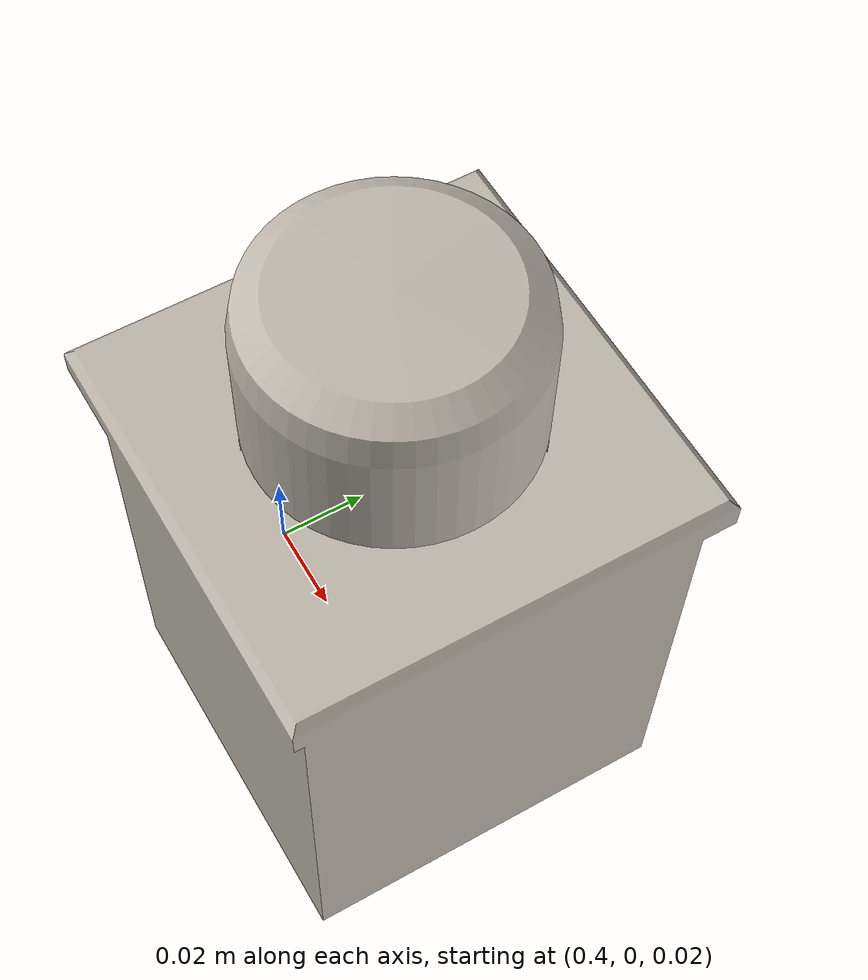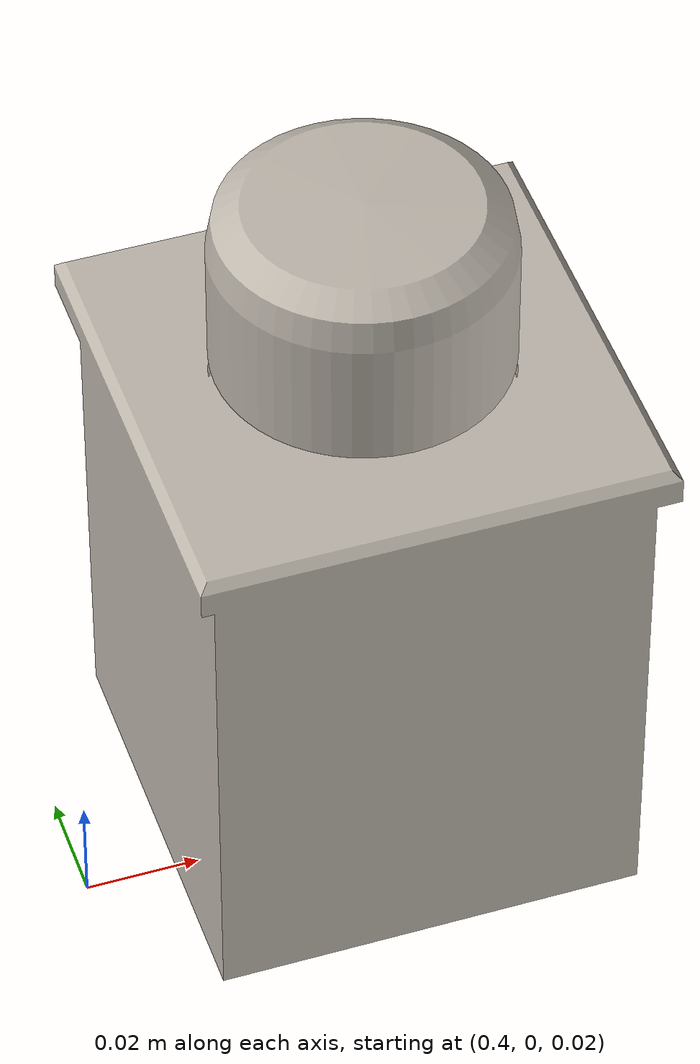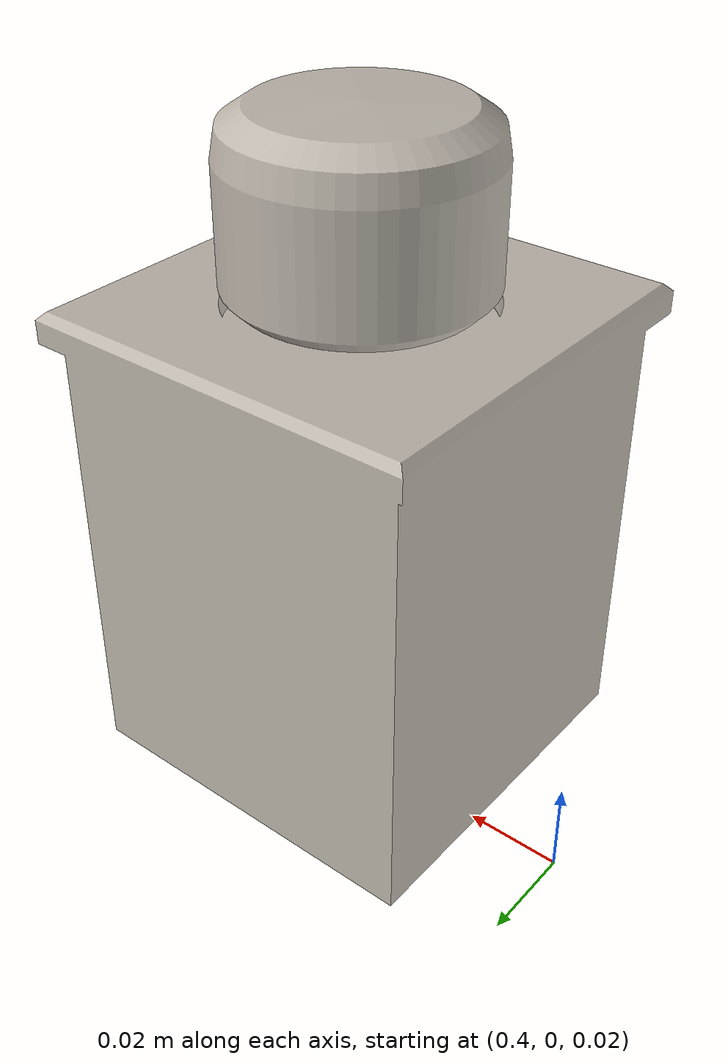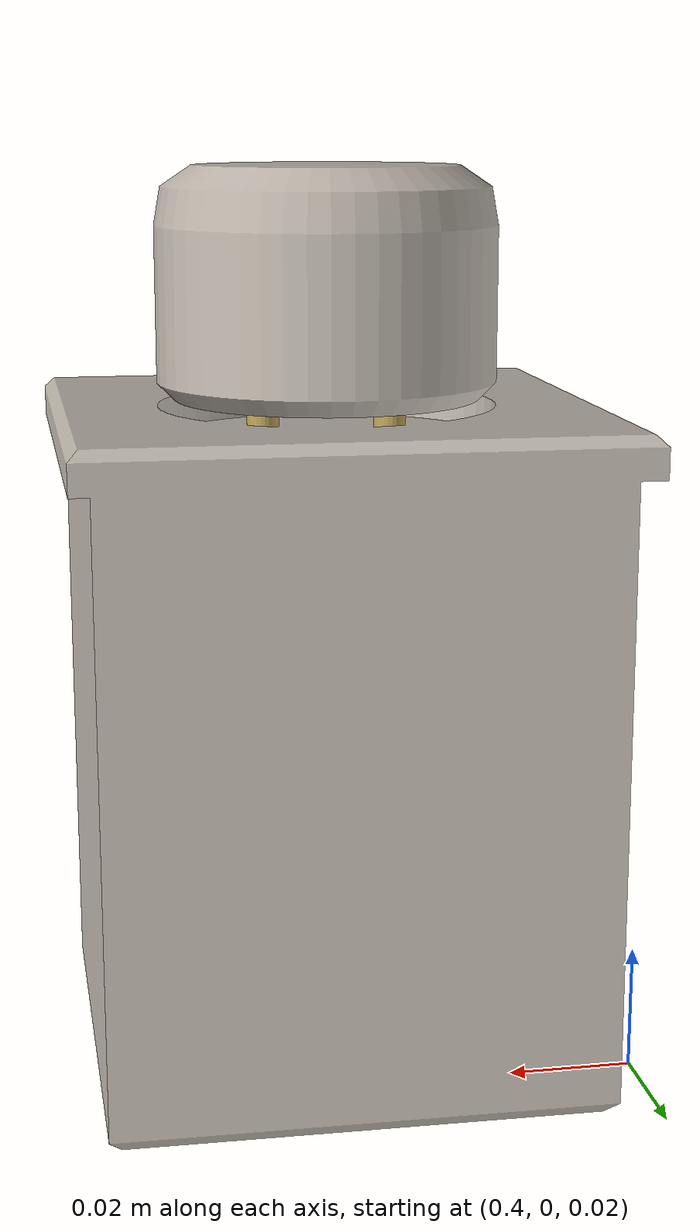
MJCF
<?xml version="1.0"?>
<mujoco model="plug">
  <compiler angle="radian" meshdir="assets" texturedir="assets"/>

  <asset>
    <texture name="socket_tex" type="2d" file="socket_tex.png"/>
    <material name="socket_mat" texture="socket_tex" specular="0.25" shininess="0.3"/>
    <mesh name="socket_vis" file="socket_vis.obj"/>
    <texture name="plug_tex" type="2d" file="plug_tex.png"/>
    <material name="plug_mat" texture="plug_tex" specular="0.25" shininess="0.3"/>
    <mesh name="plug_vis" file="plug_vis.obj"/>
  </asset>

  <worldbody>
    <body name="plug_base" pos="0.45 0 0.08" mocap="true">
      <!-- Faceplate + back box (visual). -->
      <geom name="socket_visual" type="mesh" mesh="socket_vis" material="socket_mat"
            contype="0" conaffinity="0" group="2" mass="0"/>
      <!-- Socket: four walls around a vertical bore (inner clear half-extent 0.016). -->
      <geom type="box" name="plug_body" size="0.012 0.04 0.05" pos="0.028 0 0"
            condim="3" friction="1 0.03 0.003" rgba="0.5 0.5 0.5 0.3" group="3"
            contype="2" conaffinity="1" solref="0.01 1"/>
      <geom type="box" name="plug_wall_nx" size="0.012 0.04 0.05" pos="-0.028 0 0"
            condim="3" friction="1 0.03 0.003" rgba="0.5 0.5 0.5 0.3" group="3"
            contype="2" conaffinity="1" solref="0.01 1"/>
      <geom type="box" name="plug_wall_py" size="0.04 0.012 0.05" pos="0 0.028 0"
            condim="3" friction="1 0.03 0.003" rgba="0.5 0.5 0.5 0.3" group="3"
            contype="2" conaffinity="1" solref="0.01 1"/>
      <geom type="box" name="plug_wall_ny" size="0.04 0.012 0.05" pos="0 -0.028 0"
            condim="3" friction="1 0.03 0.003" rgba="0.5 0.5 0.5 0.3" group="3"
            contype="2" conaffinity="1" solref="0.01 1"/>
      <!-- Base site at the plug moulding centre when joint = 0 (fully seated). -->
      <site name="base_site" pos="0.0 0.0 0.068" size="0.01" rgba="0 0 1 0.3"/>
      <!-- Shoulder clears the socket lip by 1 mm at the seated stop. -->
      <body name="handle" pos="0 0 0.006">
        <!-- Vertical slide with a static-friction breakaway (~4 N). -->
        <joint name="plug_slide" type="slide" axis="0 0 1"
               range="0 0.12" limited="true" damping="1.0" frictionloss="4.0"/>
        <!-- Plug moulding (visual) + the two brass pins. -->
        <geom name="plug_visual" type="mesh" mesh="plug_vis" material="plug_mat"
              contype="0" conaffinity="0" group="2" mass="0"/>
        <geom name="plug_pin_a" type="cylinder" size="0.0024 0.0095" pos="0.0095 0 0.0355"
              rgba="0.72 0.62 0.34 1" contype="0" conaffinity="0" group="2" mass="0"/>
        <geom name="plug_pin_b" type="cylinder" size="0.0024 0.0095" pos="-0.0095 0 0.0355"
              rgba="0.72 0.62 0.34 1" contype="0" conaffinity="0" group="2" mass="0"/>
        <!-- Pin bundle inside the bore (collides with the robot only). -->
        <geom type="cylinder" name="plug_shaft" size="0.012 0.0095" pos="0 0 0.0355"
              mass="0.006" condim="3" friction="1 0.03 0.003" rgba="0.5 0.5 0.5 0.3" group="3"
              contype="2" conaffinity="1" solref="0.01 1"/>
        <!-- Pinchable moulding: 50 mm across, well under the 80 mm aperture, and
             29 mm of it stands proud of the faceplate. -->
        <geom type="cylinder" name="handle" size="0.025 0.017" pos="0 0 0.062"
              mass="0.070" condim="3" friction="1 0.03 0.003" rgba="0.5 0.5 0.5 0.3" group="3"
              contype="2" conaffinity="1" solref="0.01 1"/>
        <site name="object_site" pos="0 0 0.062" size="0.01 0.01 0.01" rgba="1 0 0 1"/>
      </body>
    </body>
  </worldbody>
</mujoco>
